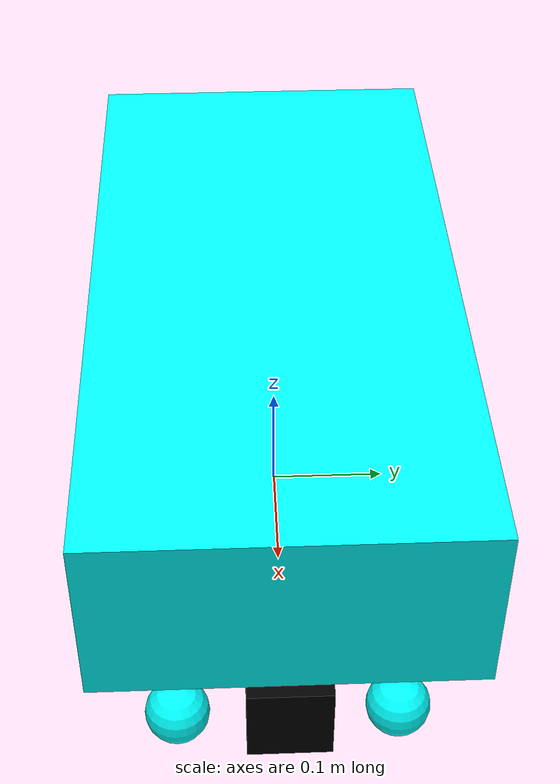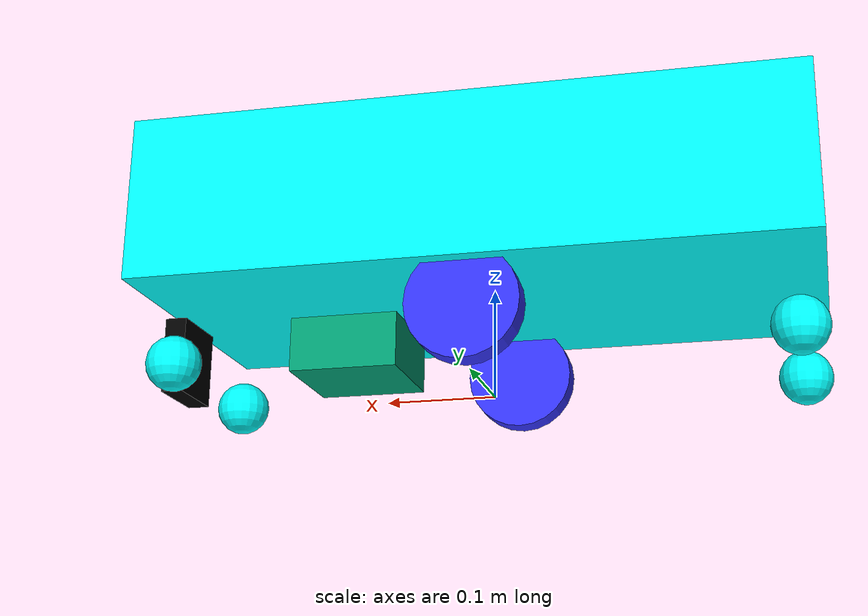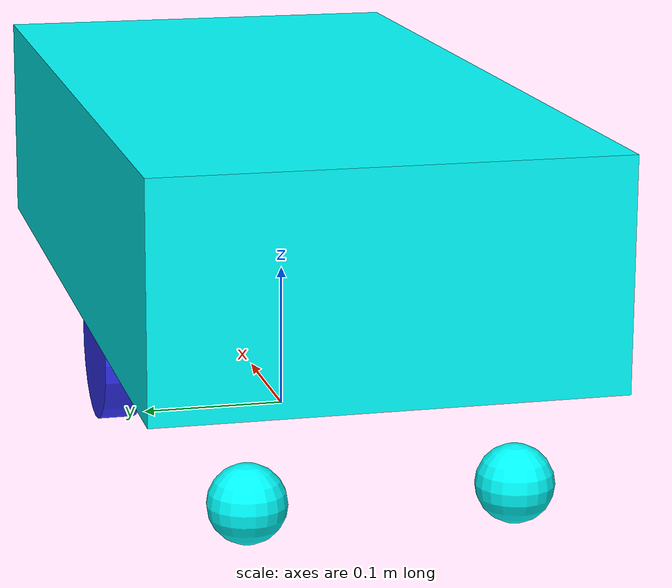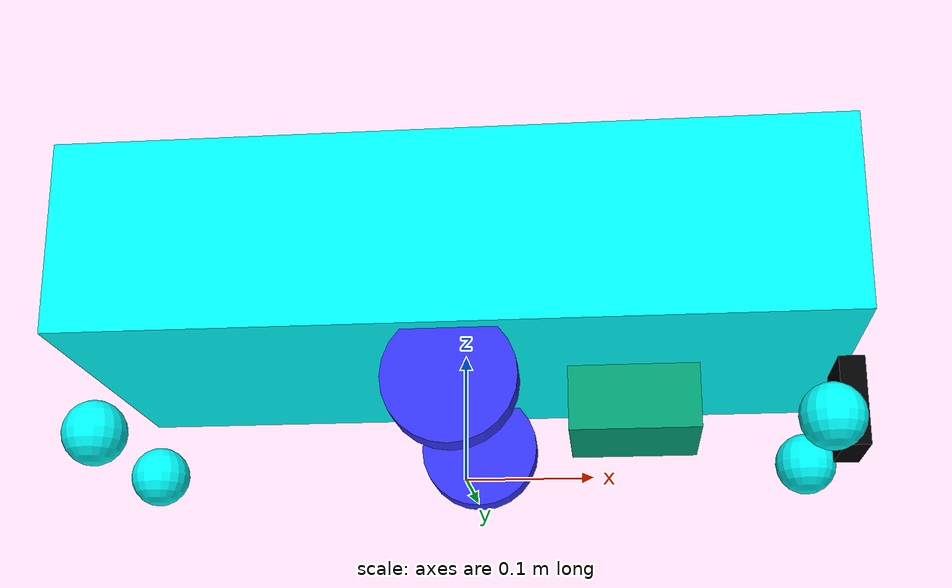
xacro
<?xml version="1.0"?>
<robot xmlns:xacro="http://www.ros.org/wiki/xacro" name="ardagv">

	<xacro:arg name="sim_mode" default="false"/> <!-- true if running in simulation -->
	<xacro:arg name="can_iface" default="can1"/>

	<xacro:include filename="ardagv_ros2_control.urdf.xacro"/>
	<xacro:include filename="ardagv_model.urdf.xacro"/>

	<xacro:include filename="lidar.xacro" />
	<xacro:include filename="imu.xacro" />
	<xacro:include filename="camera.xacro" />

</robot>

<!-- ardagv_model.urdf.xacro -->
<robot xmlns:xacro="http://www.ros.org/wiki/xacro" >

    <xacro:include filename="inertial_macros.xacro"/>

    <xacro:property name="chassis_length" value="0.60"/>
    <xacro:property name="chassis_width" value="0.30"/>
    <xacro:property name="chassis_height" value="0.15"/>
    <xacro:property name="base_width" value="0.22"/>
    <xacro:property name="chassis_zoff" value="0.08"/>
    <xacro:property name="chassis_mass" value="1.0"/>

    <xacro:property name="wheel_radius" value="0.05"/>
    <xacro:property name="wheel_width" value="0.025"/>
    <xacro:property name="wheel_mass" value="0.05"/>

    <xacro:property name="caster_wheel_radius" value="0.025"/>
    <xacro:property name="caster_wheel_mass" value="0.01"/>
    <xacro:property name="caster_wheel_zoff" value="${caster_wheel_radius}"/>

    <material name="cyan"><color rgba="0 1.0 1.0 1.0"/></material>
    <material name="gray"><color rgba="0.5 0.5 0.5 1.0"/></material>
    <material name="white"><color rgba="1 1 1 1"/></material>
    <material name="orange"><color rgba="1 0.3 0.1 1"/></material>
    <material name="blue"><color rgba="0.2 0.2 1 1"/></material>
    <material name="black"><color rgba="0 0 0 1"/></material>
    <material name="red"><color rgba="1 0 0 1"/></material>

    <!-- BASE LINK -->

    <link name="base_link"></link>

    <!-- BASE_FOOTPRINT LINK -->

    <joint name="base_footprint_joint" type="fixed">
        <parent link="base_link"/>
        <child link="base_footprint"/>
        <origin xyz="0 0 0" rpy="0 0 0"/>
    </joint>

    <link name="base_footprint"></link>

    <!-- CHASSIS LINK -->

    <joint name="chassis_joint" type="fixed">
        <parent link="base_link"/>
        <child link="chassis"/>
        <origin xyz="0 0 ${chassis_zoff}"/>
    </joint>

    <link name="chassis">
        <visual>
            <origin xyz="0 0 ${chassis_zoff}"/>
            <geometry>
                <box size="${chassis_length} ${chassis_width} ${chassis_height}"/>
            </geometry>
            <material name="cyan"/>
        </visual>
        <collision>
            <origin xyz="0 0 ${chassis_zoff}"/>
            <geometry>
                <box size="${chassis_length} ${chassis_width} ${chassis_height}"/>
            </geometry>
        </collision>
        <xacro:inertial_box mass="0.5" x="${chassis_length}" y="${chassis_width}" z="${chassis_height}">
            <origin xyz="0 0 ${chassis_zoff}" rpy="0 0 0"/>
        </xacro:inertial_box>
    </link>

    <gazebo reference="chassis">
        <material>Gazebo/Gray</material>
    </gazebo>

    <!-- LEFT WHEEL LINK -->

    <joint name="left_wheel_joint" type="continuous">
        <parent link="base_link"/>
        <child link="left_wheel"/>
        <origin xyz="0 ${(base_width + wheel_width)/2} ${wheel_radius}" rpy="-${pi/2} 0 0" />
        <axis xyz="0 0 1"/>
    </joint>

    <link name="left_wheel">
        <visual>
            <geometry>
                <cylinder radius="${wheel_radius}" length="${wheel_width}"/>
            </geometry>
            <material name="blue"/>
        </visual>
        <collision>
            <geometry>
                <sphere radius="${wheel_radius}"/>
            </geometry>
        </collision>
        <xacro:inertial_cylinder mass="${wheel_mass}" length="${wheel_width}" radius="${wheel_radius}">
            <origin xyz="0 0 0" rpy="0 0 0"/>
        </xacro:inertial_cylinder>
    </link>

    <gazebo reference="left_wheel">
        <material>Gazebo/Blue</material>
    </gazebo>

    <!-- RIGHT WHEEL LINK -->

    <joint name="right_wheel_joint" type="continuous">
        <parent link="base_link"/>
        <child link="right_wheel"/>
        <origin xyz="0 ${-(base_width + wheel_width)/2} ${wheel_radius}" rpy="${pi/2} 0 0" />
        <axis xyz="0 0 -1"/>
    </joint>

    <link name="right_wheel">
        <visual>
            <geometry>
                <cylinder radius="${wheel_radius}" length="${wheel_width}"/>
            </geometry>
            <material name="blue"/>
        </visual>
        <collision>
            <geometry>
                <sphere radius="${wheel_radius}"/>
            </geometry>
        </collision>
        <xacro:inertial_cylinder mass="${wheel_mass}" length="${wheel_width}" radius="${wheel_radius}">
            <origin xyz="0 0 0" rpy="0 0 0"/>
        </xacro:inertial_cylinder>
    </link>

    <gazebo reference="right_wheel">
        <material>Gazebo/Blue</material>
    </gazebo>

    <!-- CASTER WHEEL LINKS -->
    <xacro:macro name="caster_wheel" params="prefix x_reflect y_reflect">
        <link name="${prefix}_link">
            <visual>
                <geometry>
                    <sphere radius="${caster_wheel_radius}"/>
                </geometry>
                <material name="cyan"/>
            </visual>
            <collision>
                <origin xyz="0 0 0" rpy="0 0 0"/>
                <geometry>
                    <sphere radius="${caster_wheel_radius}"/>
                </geometry>
            </collision>
            <xacro:inertial_sphere mass="${caster_wheel_mass}" radius="${caster_wheel_radius}">
                <origin xyz="0 0 0" rpy="0 0 0"/>
            </xacro:inertial_sphere>
        </link>

        <joint name="${prefix}_joint" type="fixed">
            <parent link="base_link"/>
            <child link="${prefix}_link"/>
            <origin xyz="${x_reflect*(chassis_length/2-caster_wheel_radius)} ${y_reflect*(base_width/2-caster_wheel_radius)} ${caster_wheel_zoff}" rpy="0 0 0"/>
        </joint>

        <gazebo reference="${prefix}_link">
            <material>Gazebo/Blue</material>
            <mu1 value="0.001"/>
            <mu2 value="0.001"/>
        </gazebo>
    </xacro:macro>

    <xacro:caster_wheel prefix="front_left_caster" x_reflect="1" y_reflect="1"/>
    <xacro:caster_wheel prefix="front_right_caster" x_reflect="1" y_reflect="-1"/>
    <xacro:caster_wheel prefix="rear_left_caster" x_reflect="-1" y_reflect="1"/>
    <xacro:caster_wheel prefix="rear_right_caster" x_reflect="-1" y_reflect="-1"/>

</robot>

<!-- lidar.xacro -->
<robot xmlns:xacro="http://www.ros.org/wiki/xacro" >

    <joint name="cam1_laser_joint" type="fixed">
        <parent link="base_link"/>
        <child link="cam1_laser"/>
        <origin xyz="${chassis_length/2} 0 ${wheel_radius}" rpy="0 0 0" />
    </joint>

    <link name="cam1_laser">
        <inertial>
            <origin xyz="0 0 0" rpy="0 0 0"/>
            <mass value="0.125"/>
            <inertia ixx="0.001" ixy="0" ixz="0" iyy="0.001" iyz="0" izz="0.001" />
        </inertial>

        <collision>
            <origin xyz="0 0 0" rpy="0 0 0"/>
            <geometry>
                <box size="0.02 0.065 0.07"/>
            </geometry>
        </collision>

        <visual>
            <origin xyz="0 0 0" rpy="0 0 0"/>
            <geometry>
                <box size="0.02 0.065 0.07"/>
            </geometry>
            <material name="black"/>
        </visual>
    </link>

    <gazebo reference="cam1_laser">
        <material>Gazebo/Black</material>

        <sensor name="laser" type="ray">
            <pose> 0 0 0 0 0 0 </pose>
            <visualize>false</visualize>
            <update_rate>10</update_rate>
            <ray>
                <scan>
                    <horizontal>
                        <samples>75</samples>
                        <min_angle>-0.654166</min_angle>
                        <max_angle>0.654166</max_angle>
                    </horizontal>
                </scan>
                <range>
                    <min>0.4</min>
                    <max>5</max>
                </range>
            </ray>
            <plugin name="laser_controller" filename="libgazebo_ros_ray_sensor.so">
                <ros>
                    <remapping>~/out:=/scan</remapping>
                </ros>
                <output_type>sensor_msgs/LaserScan</output_type>
                <frame_name>cam1_laser</frame_name>
            </plugin>
        </sensor>
    </gazebo>

</robot>

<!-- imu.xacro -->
<robot xmlns:xacro="http://www.ros.org/wiki/xacro" >

    <link name="imu_link">
        <visual>
            <geometry>
                <box size="0.1 0.1 0.05"/>
            </geometry>
        </visual>

        <collision>
            <geometry>
                <box size="0.1 0.1 0.05"/>
            </geometry>
        </collision>
    </link>

    <joint name="imu_joint" type="fixed">
        <parent link="base_link"/>
        <child link="imu_link"/>
        <origin xyz="0.133 -0.01 ${wheel_radius}" rpy="0 0 0"/>
    </joint>

    <gazebo reference="imu_link">
        <sensor name="imu_sensor" type="imu">
        <plugin filename="libgazebo_ros_imu_sensor.so" name="imu_plugin">
            <ros>
            <remapping>~/out:=imu</remapping>
            </ros>
            <initial_orientation_as_reference>false</initial_orientation_as_reference>
        </plugin>
        <always_on>true</always_on>
        <update_rate>100</update_rate>
        <visualize>true</visualize>
        <imu>
            <angular_velocity>
                <x><noise type="gaussian">
                    <mean>0.0</mean>
                    <stddev>2e-4</stddev>
                    <bias_mean>0.0000075</bias_mean>
                    <bias_stddev>0.0000008</bias_stddev>
                </noise></x>
                <y><noise type="gaussian">
                    <mean>0.0</mean>
                    <stddev>2e-4</stddev>
                    <bias_mean>0.0000075</bias_mean>
                    <bias_stddev>0.0000008</bias_stddev>
                </noise></y>
                <z><noise type="gaussian">
                    <mean>0.0</mean>
                    <stddev>2e-4</stddev>
                    <bias_mean>0.0000075</bias_mean>
                    <bias_stddev>0.0000008</bias_stddev>
                </noise></z>
            </angular_velocity>
            <linear_acceleration>
                <x><noise type="gaussian">
                    <mean>0.0</mean>
                    <stddev>1.7e-2</stddev>
                    <bias_mean>0.1</bias_mean>
                    <bias_stddev>0.001</bias_stddev>
                </noise></x>
                <y><noise type="gaussian">
                    <mean>0.0</mean>
                    <stddev>1.7e-2</stddev>
                    <bias_mean>0.1</bias_mean>
                    <bias_stddev>0.001</bias_stddev>
                </noise></y>
                <z><noise type="gaussian">
                    <mean>-9.81</mean>    <!-- Offset by gravitational acceleration -->
                    <stddev>1.7e-2</stddev>
                    <bias_mean>0.0</bias_mean>  <!-- Reduced bias -->
                    <bias_stddev>0.0</bias_stddev>  <!-- Removed bias variation -->
                </noise></z>
            </linear_acceleration>
        </imu>
        </sensor>
    </gazebo>

  </robot>

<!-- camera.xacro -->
<robot xmlns:xacro="http://www.ros.org/wiki/xacro" >

    <joint name="cam1_adtf31xx_joint" type="fixed">
        <parent link="base_link"/>
        <child link="cam1_adtf31xx"/>
        <origin xyz="${chassis_length / 2}  0 ${wheel_radius}" rpy="0 0 0" />
    </joint>

    <link name="cam1_adtf31xx">
        <inertial>
            <origin xyz="0 0 0" rpy="0 0 0"/>
            <mass value="0.125"/>
            <inertia ixx="0.001" ixy="0" ixz="0" iyy="0.001" iyz="0" izz="0.001" />
        </inertial>

        <collision>
            <origin xyz="0 0 0" rpy="0 0 0"/>
            <geometry>
                <box size="0.02 0.065 0.07"/>
            </geometry>
        </collision>

        <visual>
            <origin xyz="0 0 0" rpy="0 0 0"/>
            <geometry>
                <box size="0.02 0.065 0.07"/>
            </geometry>
            <material name="black"/>
        </visual>
    </link>

    <joint name="cam1_adtf31xx_optical_joint" type="fixed">
        <parent link="cam1_adtf31xx"/>
        <child link="cam1_adtf31xx_optical"/>
        <origin xyz="0 0 0" rpy="${pi/2} 0 ${pi/2}"/>
    </joint>

    <link name="cam1_adtf31xx_optical"></link>

    <gazebo reference="cam1_adtf31xx">
        <material>Gazebo/Black</material>

        <sensor name="camera" type="camera">
            <pose> 0 0 0 0 0 0 </pose>
            <visualize>true</visualize>
            <update_rate>10</update_rate>
            <camera>
                <horizontal_fov>2</horizontal_fov>
                <image>
                    <format>MONO16</format>
                    <width>512</width>
                    <height>512</height>
                </image>
                <clip>
                    <near>0.4</near>
                    <far>5.0</far>
                </clip>
            </camera>
            <plugin name="camera_controller" filename="libgazebo_ros_camera.so">
                <frame_name>cam1_adtf31xx_optical</frame_name>
            </plugin>
        </sensor>
    </gazebo>

</robot>
